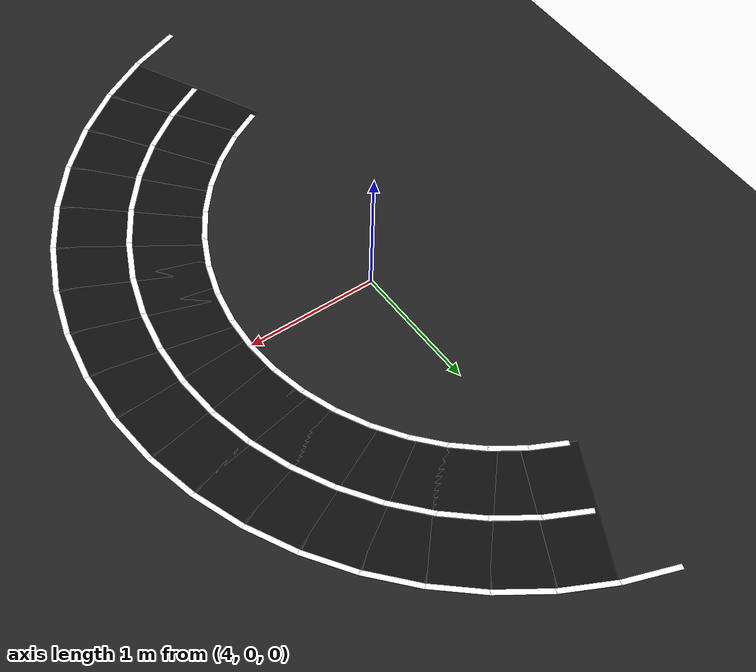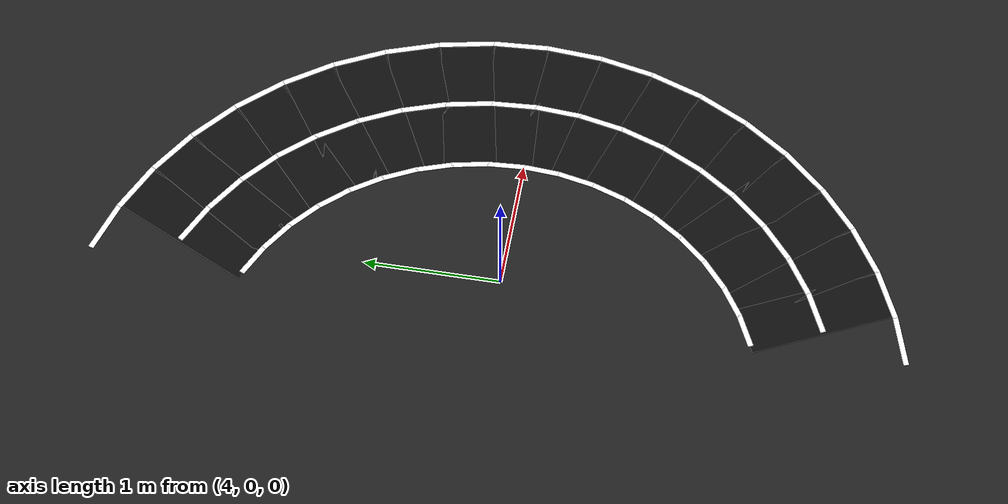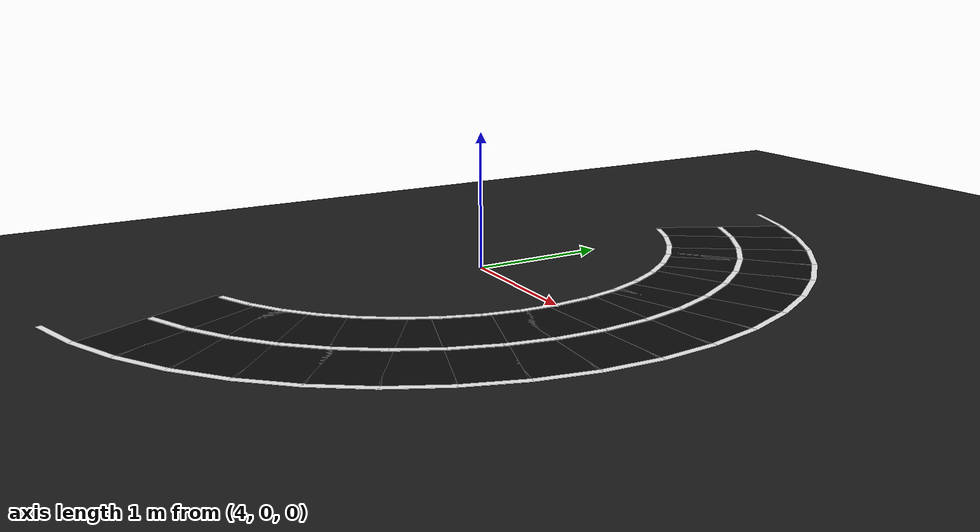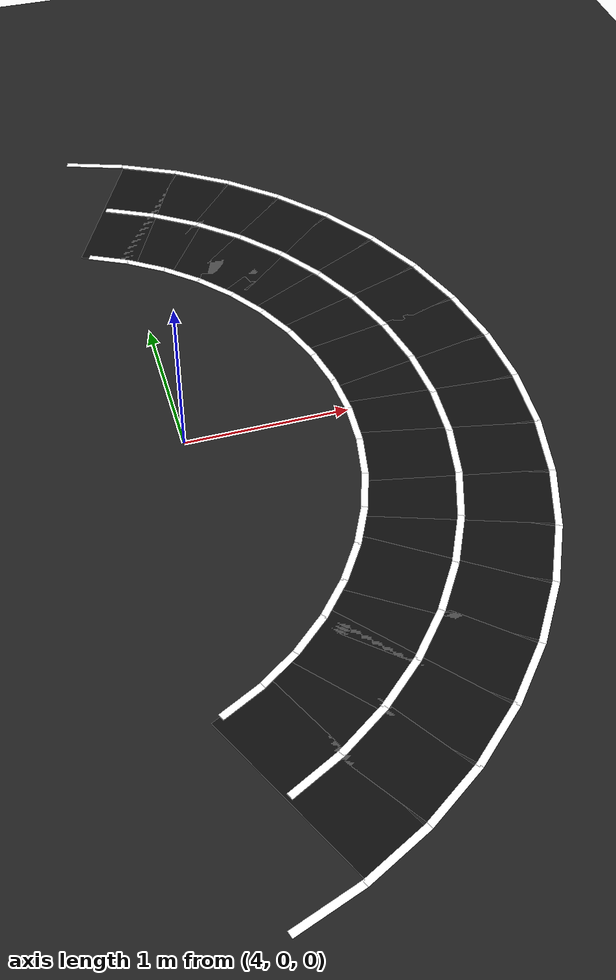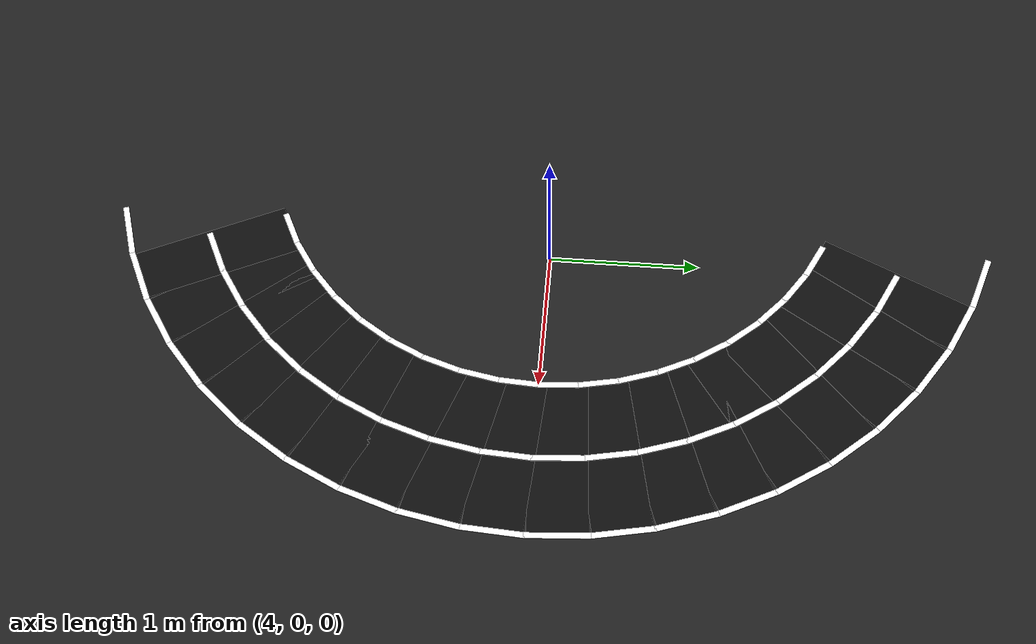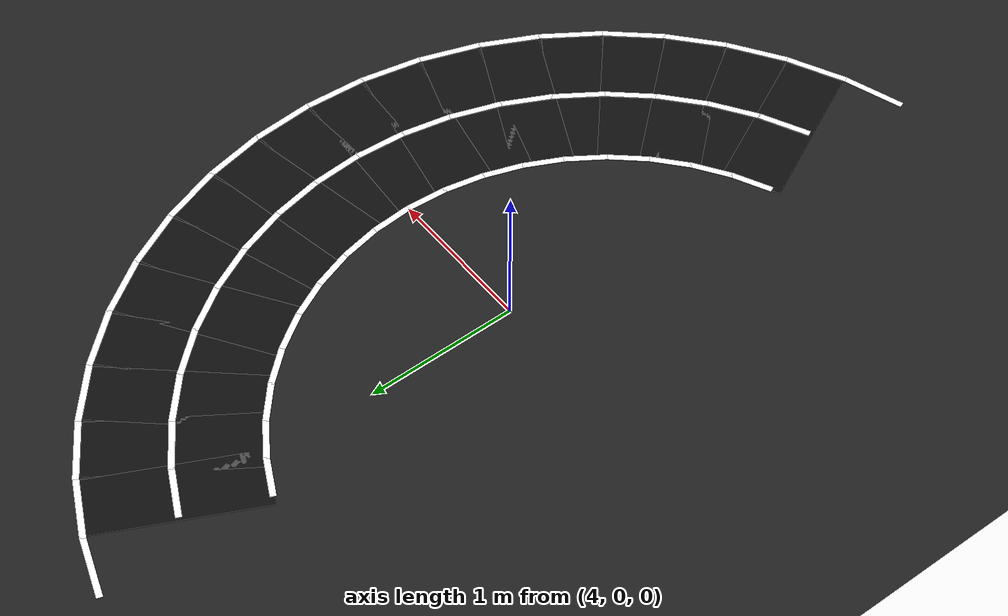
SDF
<sdf version="1.6">
 <world name="oval_lane_world">
  <model name="ground_plane">
   <static>true</static>
   <link name="link">
    <collision name="collision">
     <geometry><plane><normal>0 0 1</normal><size>100 100</size></plane></geometry>
     <surface><friction><ode><mu>1.0</mu><mu2>1.0</mu2></ode></friction></surface>
    </collision>
    <visual name="visual">
     <geometry><plane><normal>0 0 1</normal><size>100 100</size></plane></geometry>
     <material><ambient>0.10 0.10 0.10 1</ambient><diffuse>0.12 0.12 0.12 1</diffuse></material>
    </visual>
   </link>
  </model>
  <model name="cl_r_2_2">
   <static>true</static>
   <pose>3.98617 2.90518 0.00700 0 0 -0.32725</pose>
   <link name="link">
    <visual name="visual">
     <geometry><box><size>0.41160 0.04000 0.00400</size></box></geometry>
     <material>
      <ambient>1.000 1.000 1.000 1</ambient>
      <diffuse>1.000 1.000 1.000 1</diffuse>
      <specular>0.05 0.05 0.05 1</specular>
     </material>
    </visual>
   </link>
  </model>
  <model name="road_r_3">
   <static>true</static>
   <pose>4.11744 2.26595 0.00250 0.0 0.0 -0.45815</pose>
   <link name="link">
    <visual name="visual">
     <geometry><box><size>0.38165 1.06800 0.00500</size></box></geometry>
     <material>
      <ambient>0.030 0.030 0.030 1</ambient>
      <diffuse>0.050 0.050 0.050 1</diffuse>
      <specular>0.05 0.05 0.05 1</specular>
     </material>
    </visual>
   </link>
  </model>
  <model name="cl_r_0_3">
   <static>true</static>
   <pose>3.88458 1.79375 0.00700 0 0 -0.45815</pose>
   <link name="link">
    <visual name="visual">
     <geometry><box><size>0.27180 0.04000 0.00400</size></box></geometry>
     <material>
      <ambient>1.000 1.000 1.000 1</ambient>
      <diffuse>1.000 1.000 1.000 1</diffuse>
      <specular>0.05 0.05 0.05 1</specular>
     </material>
    </visual>
   </link>
  </model>
  <model name="cl_r_1_3">
   <static>true</static>
   <pose>4.12076 2.27268 0.00700 0 0 -0.45815</pose>
   <link name="link">
    <visual name="visual">
     <geometry><box><size>0.34170 0.04000 0.00400</size></box></geometry>
     <material>
      <ambient>1.000 1.000 1.000 1</ambient>
      <diffuse>1.000 1.000 1.000 1</diffuse>
      <specular>0.05 0.05 0.05 1</specular>
     </material>
    </visual>
   </link>
  </model>
  <model name="cl_r_2_3">
   <static>true</static>
   <pose>4.35694 2.75161 0.00700 0 0 -0.45815</pose>
   <link name="link">
    <visual name="visual">
     <geometry><box><size>0.41160 0.04000 0.00400</size></box></geometry>
     <material>
      <ambient>1.000 1.000 1.000 1</ambient>
      <diffuse>1.000 1.000 1.000 1</diffuse>
      <specular>0.05 0.05 0.05 1</specular>
     </material>
    </visual>
   </link>
  </model>
  <model name="road_r_4">
   <static>true</static>
   <pose>4.40365 2.10071 0.00250 0.0 0.0 -0.58905</pose>
   <link name="link">
    <visual name="visual">
     <geometry><box><size>0.38165 1.06800 0.00500</size></box></geometry>
     <material>
      <ambient>0.030 0.030 0.030 1</ambient>
      <diffuse>0.050 0.050 0.050 1</diffuse>
      <specular>0.05 0.05 0.05 1</specular>
     </material>
    </visual>
   </link>
  </model>
  <model name="cl_r_0_4">
   <static>true</static>
   <pose>4.11114 1.66294 0.00700 0 0 -0.58905</pose>
   <link name="link">
    <visual name="visual">
     <geometry><box><size>0.27180 0.04000 0.00400</size></box></geometry>
     <material>
      <ambient>1.000 1.000 1.000 1</ambient>
      <diffuse>1.000 1.000 1.000 1</diffuse>
      <specular>0.05 0.05 0.05 1</specular>
     </material>
    </visual>
   </link>
  </model>
  <model name="cl_r_1_4">
   <static>true</static>
   <pose>4.40781 2.10694 0.00700 0 0 -0.58905</pose>
   <link name="link">
    <visual name="visual">
     <geometry><box><size>0.34170 0.04000 0.00400</size></box></geometry>
     <material>
      <ambient>1.000 1.000 1.000 1</ambient>
      <diffuse>1.000 1.000 1.000 1</diffuse>
      <specular>0.05 0.05 0.05 1</specular>
     </material>
    </visual>
   </link>
  </model>
  <model name="cl_r_2_4">
   <static>true</static>
   <pose>4.70449 2.55095 0.00700 0 0 -0.58905</pose>
   <link name="link">
    <visual name="visual">
     <geometry><box><size>0.41160 0.04000 0.00400</size></box></geometry>
     <material>
      <ambient>1.000 1.000 1.000 1</ambient>
      <diffuse>1.000 1.000 1.000 1</diffuse>
      <specular>0.05 0.05 0.05 1</specular>
     </material>
    </visual>
   </link>
  </model>
  <model name="road_r_5">
   <static>true</static>
   <pose>4.66584 1.89952 0.00250 0.0 0.0 -0.71995</pose>
   <link name="link">
    <visual name="visual">
     <geometry><box><size>0.38165 1.06800 0.00500</size></box></geometry>
     <material>
      <ambient>0.030 0.030 0.030 1</ambient>
      <diffuse>0.050 0.050 0.050 1</diffuse>
      <specular>0.05 0.05 0.05 1</specular>
     </material>
    </visual>
   </link>
  </model>
  <model name="cl_r_0_5">
   <static>true</static>
   <pose>4.31869 1.50368 0.00700 0 0 -0.71995</pose>
   <link name="link">
    <visual name="visual">
     <geometry><box><size>0.27180 0.04000 0.00400</size></box></geometry>
     <material>
      <ambient>1.000 1.000 1.000 1</ambient>
      <diffuse>1.000 1.000 1.000 1</diffuse>
      <specular>0.05 0.05 0.05 1</specular>
     </material>
    </visual>
   </link>
  </model>
  <model name="cl_r_1_5">
   <static>true</static>
   <pose>4.67078 1.90516 0.00700 0 0 -0.71995</pose>
   <link name="link">
    <visual name="visual">
     <geometry><box><size>0.34170 0.04000 0.00400</size></box></geometry>
     <material>
      <ambient>1.000 1.000 1.000 1</ambient>
      <diffuse>1.000 1.000 1.000 1</diffuse>
      <specular>0.05 0.05 0.05 1</specular>
     </material>
    </visual>
   </link>
  </model>
  <model name="cl_r_2_5">
   <static>true</static>
   <pose>5.02287 2.30664 0.00700 0 0 -0.71995</pose>
   <link name="link">
    <visual name="visual">
     <geometry><box><size>0.41160 0.04000 0.00400</size></box></geometry>
     <material>
      <ambient>1.000 1.000 1.000 1</ambient>
      <diffuse>1.000 1.000 1.000 1</diffuse>
      <specular>0.05 0.05 0.05 1</specular>
     </material>
    </visual>
   </link>
  </model>
  <model name="road_r_6">
   <static>true</static>
   <pose>4.89952 1.66584 0.00250 0.0 0.0 -0.85085</pose>
   <link name="link">
    <visual name="visual">
     <geometry><box><size>0.38165 1.06800 0.00500</size></box></geometry>
     <material>
      <ambient>0.030 0.030 0.030 1</ambient>
      <diffuse>0.050 0.050 0.050 1</diffuse>
      <specular>0.05 0.05 0.05 1</specular>
     </material>
    </visual>
   </link>
  </model>
  <model name="cl_r_0_6">
   <static>true</static>
   <pose>4.50368 1.31869 0.00700 0 0 -0.85085</pose>
   <link name="link">
    <visual name="visual">
     <geometry><box><size>0.27180 0.04000 0.00400</size></box></geometry>
     <material>
      <ambient>1.000 1.000 1.000 1</ambient>
      <diffuse>1.000 1.000 1.000 1</diffuse>
      <specular>0.05 0.05 0.05 1</specular>
     </material>
    </visual>
   </link>
  </model>
  <model name="cl_r_1_6">
   <static>true</static>
   <pose>4.90516 1.67078 0.00700 0 0 -0.85085</pose>
   <link name="link">
    <visual name="visual">
     <geometry><box><size>0.34170 0.04000 0.00400</size></box></geometry>
     <material>
      <ambient>1.000 1.000 1.000 1</ambient>
      <diffuse>1.000 1.000 1.000 1</diffuse>
      <specular>0.05 0.05 0.05 1</specular>
     </material>
    </visual>
   </link>
  </model>
  <model name="cl_r_2_6">
   <static>true</static>
   <pose>5.30665 2.02287 0.00700 0 0 -0.85085</pose>
   <link name="link">
    <visual name="visual">
     <geometry><box><size>0.41160 0.04000 0.00400</size></box></geometry>
     <material>
      <ambient>1.000 1.000 1.000 1</ambient>
      <diffuse>1.000 1.000 1.000 1</diffuse>
      <specular>0.05 0.05 0.05 1</specular>
     </material>
    </visual>
   </link>
  </model>
  <model name="road_r_7">
   <static>true</static>
   <pose>5.10071 1.40365 0.00250 0.0 0.0 -0.98175</pose>
   <link name="link">
    <visual name="visual">
     <geometry><box><size>0.38165 1.06800 0.00500</size></box></geometry>
     <material>
      <ambient>0.030 0.030 0.030 1</ambient>
      <diffuse>0.050 0.050 0.050 1</diffuse>
      <specular>0.05 0.05 0.05 1</specular>
     </material>
    </visual>
   </link>
  </model>
  <model name="cl_r_0_7">
   <static>true</static>
   <pose>4.66294 1.11114 0.00700 0 0 -0.98175</pose>
   <link name="link">
    <visual name="visual">
     <geometry><box><size>0.27180 0.04000 0.00400</size></box></geometry>
     <material>
      <ambient>1.000 1.000 1.000 1</ambient>
      <diffuse>1.000 1.000 1.000 1</diffuse>
      <specular>0.05 0.05 0.05 1</specular>
     </material>
    </visual>
   </link>
  </model>
  <model name="cl_r_1_7">
   <static>true</static>
   <pose>5.10694 1.40781 0.00700 0 0 -0.98175</pose>
   <link name="link">
    <visual name="visual">
     <geometry><box><size>0.34170 0.04000 0.00400</size></box></geometry>
     <material>
      <ambient>1.000 1.000 1.000 1</ambient>
      <diffuse>1.000 1.000 1.000 1</diffuse>
      <specular>0.05 0.05 0.05 1</specular>
     </material>
    </visual>
   </link>
  </model>
  <model name="cl_r_2_7">
   <static>true</static>
   <pose>5.55095 1.70449 0.00700 0 0 -0.98175</pose>
   <link name="link">
    <visual name="visual">
     <geometry><box><size>0.41160 0.04000 0.00400</size></box></geometry>
     <material>
      <ambient>1.000 1.000 1.000 1</ambient>
      <diffuse>1.000 1.000 1.000 1</diffuse>
      <specular>0.05 0.05 0.05 1</specular>
     </material>
    </visual>
   </link>
  </model>
  <model name="road_r_8">
   <static>true</static>
   <pose>5.26595 1.11744 0.00250 0.0 0.0 -1.11265</pose>
   <link name="link">
    <visual name="visual">
     <geometry><box><size>0.38165 1.06800 0.00500</size></box></geometry>
     <material>
      <ambient>0.030 0.030 0.030 1</ambient>
      <diffuse>0.050 0.050 0.050 1</diffuse>
      <specular>0.05 0.05 0.05 1</specular>
     </material>
    </visual>
   </link>
  </model>
  <model name="cl_r_0_8">
   <static>true</static>
   <pose>4.79375 0.88458 0.00700 0 0 -1.11265</pose>
   <link name="link">
    <visual name="visual">
     <geometry><box><size>0.27180 0.04000 0.00400</size></box></geometry>
     <material>
      <ambient>1.000 1.000 1.000 1</ambient>
      <diffuse>1.000 1.000 1.000 1</diffuse>
      <specular>0.05 0.05 0.05 1</specular>
     </material>
    </visual>
   </link>
  </model>
  <model name="cl_r_1_8">
   <static>true</static>
   <pose>5.27268 1.12076 0.00700 0 0 -1.11265</pose>
   <link name="link">
    <visual name="visual">
     <geometry><box><size>0.34170 0.04000 0.00400</size></box></geometry>
     <material>
      <ambient>1.000 1.000 1.000 1</ambient>
      <diffuse>1.000 1.000 1.000 1</diffuse>
      <specular>0.05 0.05 0.05 1</specular>
     </material>
    </visual>
   </link>
  </model>
  <model name="cl_r_2_8">
   <static>true</static>
   <pose>5.75161 1.35694 0.00700 0 0 -1.11265</pose>
   <link name="link">
    <visual name="visual">
     <geometry><box><size>0.41160 0.04000 0.00400</size></box></geometry>
     <material>
      <ambient>1.000 1.000 1.000 1</ambient>
      <diffuse>1.000 1.000 1.000 1</diffuse>
      <specular>0.05 0.05 0.05 1</specular>
     </material>
    </visual>
   </link>
  </model>
  <model name="road_r_9">
   <static>true</static>
   <pose>5.39242 0.81212 0.00250 0.0 0.0 -1.24355</pose>
   <link name="link">
    <visual name="visual">
     <geometry><box><size>0.38165 1.06800 0.00500</size></box></geometry>
     <material>
      <ambient>0.030 0.030 0.030 1</ambient>
      <diffuse>0.050 0.050 0.050 1</diffuse>
      <specular>0.05 0.05 0.05 1</specular>
     </material>
    </visual>
   </link>
  </model>
  <model name="cl_r_0_9">
   <static>true</static>
   <pose>4.89386 0.64288 0.00700 0 0 -1.24355</pose>
   <link name="link">
    <visual name="visual">
     <geometry><box><size>0.27180 0.04000 0.00400</size></box></geometry>
     <material>
      <ambient>1.000 1.000 1.000 1</ambient>
      <diffuse>1.000 1.000 1.000 1</diffuse>
      <specular>0.05 0.05 0.05 1</specular>
     </material>
    </visual>
   </link>
  </model>
  <model name="cl_r_1_9">
   <static>true</static>
   <pose>5.39952 0.81453 0.00700 0 0 -1.24355</pose>
   <link name="link">
    <visual name="visual">
     <geometry><box><size>0.34170 0.04000 0.00400</size></box></geometry>
     <material>
      <ambient>1.000 1.000 1.000 1</ambient>
      <diffuse>1.000 1.000 1.000 1</diffuse>
      <specular>0.05 0.05 0.05 1</specular>
     </material>
    </visual>
   </link>
  </model>
  <model name="cl_r_2_9">
   <static>true</static>
   <pose>5.90518 0.98618 0.00700 0 0 -1.24355</pose>
   <link name="link">
    <visual name="visual">
     <geometry><box><size>0.41160 0.04000 0.00400</size></box></geometry>
     <material>
      <ambient>1.000 1.000 1.000 1</ambient>
      <diffuse>1.000 1.000 1.000 1</diffuse>
      <specular>0.05 0.05 0.05 1</specular>
     </material>
    </visual>
   </link>
  </model>
  <model name="road_r_10">
   <static>true</static>
   <pose>5.47795 0.49290 0.00250 0.0 0.0 -1.37445</pose>
   <link name="link">
    <visual name="visual">
     <geometry><box><size>0.38165 1.06800 0.00500</size></box></geometry>
     <material>
      <ambient>0.030 0.030 0.030 1</ambient>
      <diffuse>0.050 0.050 0.050 1</diffuse>
      <specular>0.05 0.05 0.05 1</specular>
     </material>
    </visual>
   </link>
  </model>
  <model name="cl_r_0_10">
   <static>true</static>
   <pose>4.96157 0.39018 0.00700 0 0 -1.37445</pose>
   <link name="link">
    <visual name="visual">
     <geometry><box><size>0.27180 0.04000 0.00400</size></box></geometry>
     <material>
      <ambient>1.000 1.000 1.000 1</ambient>
      <diffuse>1.000 1.000 1.000 1</diffuse>
      <specular>0.05 0.05 0.05 1</specular>
     </material>
    </visual>
   </link>
  </model>
  <model name="cl_r_1_10">
   <static>true</static>
   <pose>5.48531 0.49436 0.00700 0 0 -1.37445</pose>
   <link name="link">
    <visual name="visual">
     <geometry><box><size>0.34170 0.04000 0.00400</size></box></geometry>
     <material>
      <ambient>1.000 1.000 1.000 1</ambient>
      <diffuse>1.000 1.000 1.000 1</diffuse>
      <specular>0.05 0.05 0.05 1</specular>
     </material>
    </visual>
   </link>
  </model>
  <model name="cl_r_2_10">
   <static>true</static>
   <pose>6.00905 0.59854 0.00700 0 0 -1.37445</pose>
   <link name="link">
    <visual name="visual">
     <geometry><box><size>0.41160 0.04000 0.00400</size></box></geometry>
     <material>
      <ambient>1.000 1.000 1.000 1</ambient>
      <diffuse>1.000 1.000 1.000 1</diffuse>
      <specular>0.05 0.05 0.05 1</specular>
     </material>
    </visual>
   </link>
  </model>
  <model name="road_r_11">
   <static>true</static>
   <pose>5.52109 0.16524 0.00250 0.0 0.0 -1.50535</pose>
   <link name="link">
    <visual name="visual">
     <geometry><box><size>0.38165 1.06800 0.00500</size></box></geometry>
     <material>
      <ambient>0.030 0.030 0.030 1</ambient>
      <diffuse>0.050 0.050 0.050 1</diffuse>
      <specular>0.05 0.05 0.05 1</specular>
     </material>
    </visual>
   </link>
  </model>
  <model name="cl_r_0_11">
   <static>true</static>
   <pose>4.99572 0.13081 0.00700 0 0 -1.50535</pose>
   <link name="link">
    <visual name="visual">
     <geometry><box><size>0.27180 0.04000 0.00400</size></box></geometry>
     <material>
      <ambient>1.000 1.000 1.000 1</ambient>
      <diffuse>1.000 1.000 1.000 1</diffuse>
      <specular>0.05 0.05 0.05 1</specular>
     </material>
    </visual>
   </link>
  </model>
  <model name="cl_r_1_11">
   <static>true</static>
   <pose>5.52858 0.16573 0.00700 0 0 -1.50535</pose>
   <link name="link">
    <visual name="visual">
     <geometry><box><size>0.34170 0.04000 0.00400</size></box></geometry>
     <material>
      <ambient>1.000 1.000 1.000 1</ambient>
      <diffuse>1.000 1.000 1.000 1</diffuse>
      <specular>0.05 0.05 0.05 1</specular>
     </material>
    </visual>
   </link>
  </model>
  <model name="cl_r_2_11">
   <static>true</static>
   <pose>6.06143 0.20066 0.00700 0 0 -1.50535</pose>
   <link name="link">
    <visual name="visual">
     <geometry><box><size>0.41160 0.04000 0.00400</size></box></geometry>
     <material>
      <ambient>1.000 1.000 1.000 1</ambient>
      <diffuse>1.000 1.000 1.000 1</diffuse>
      <specular>0.05 0.05 0.05 1</specular>
     </material>
    </visual>
   </link>
  </model>
  <model name="road_r_12">
   <static>true</static>
   <pose>5.52109 -0.16524 0.00250 0.0 0.0 -1.63625</pose>
   <link name="link">
    <visual name="visual">
     <geometry><box><size>0.38165 1.06800 0.00500</size></box></geometry>
     <material>
      <ambient>0.030 0.030 0.030 1</ambient>
      <diffuse>0.050 0.050 0.050 1</diffuse>
      <specular>0.05 0.05 0.05 1</specular>
     </material>
    </visual>
   </link>
  </model>
  <model name="cl_r_0_12">
   <static>true</static>
   <pose>4.99572 -0.13081 0.00700 0 0 -1.63625</pose>
   <link name="link">
    <visual name="visual">
     <geometry><box><size>0.27180 0.04000 0.00400</size></box></geometry>
     <material>
      <ambient>1.000 1.000 1.000 1</ambient>
      <diffuse>1.000 1.000 1.000 1</diffuse>
      <specular>0.05 0.05 0.05 1</specular>
     </material>
    </visual>
   </link>
  </model>
  <model name="cl_r_1_12">
   <static>true</static>
   <pose>5.52857 -0.16573 0.00700 0 0 -1.63625</pose>
   <link name="link">
    <visual name="visual">
     <geometry><box><size>0.34170 0.04000 0.00400</size></box></geometry>
     <material>
      <ambient>1.000 1.000 1.000 1</ambient>
      <diffuse>1.000 1.000 1.000 1</diffuse>
      <specular>0.05 0.05 0.05 1</specular>
     </material>
    </visual>
   </link>
  </model>
  <model name="cl_r_2_12">
   <static>true</static>
   <pose>6.06143 -0.20066 0.00700 0 0 -1.63625</pose>
   <link name="link">
    <visual name="visual">
     <geometry><box><size>0.41160 0.04000 0.00400</size></box></geometry>
     <material>
      <ambient>1.000 1.000 1.000 1</ambient>
      <diffuse>1.000 1.000 1.000 1</diffuse>
      <specular>0.05 0.05 0.05 1</specular>
     </material>
    </visual>
   </link>
  </model>
  <model name="road_r_13">
   <static>true</static>
   <pose>5.47795 -0.49290 0.00250 0.0 0.0 -1.76715</pose>
   <link name="link">
    <visual name="visual">
     <geometry><box><size>0.38165 1.06800 0.00500</size></box></geometry>
     <material>
      <ambient>0.030 0.030 0.030 1</ambient>
      <diffuse>0.050 0.050 0.050 1</diffuse>
      <specular>0.05 0.05 0.05 1</specular>
     </material>
    </visual>
   </link>
  </model>
  <model name="cl_r_0_13">
   <static>true</static>
   <pose>4.96157 -0.39018 0.00700 0 0 -1.76715</pose>
   <link name="link">
    <visual name="visual">
     <geometry><box><size>0.27180 0.04000 0.00400</size></box></geometry>
     <material>
      <ambient>1.000 1.000 1.000 1</ambient>
      <diffuse>1.000 1.000 1.000 1</diffuse>
      <specular>0.05 0.05 0.05 1</specular>
     </material>
    </visual>
   </link>
  </model>
  <model name="cl_r_1_13">
   <static>true</static>
   <pose>5.48531 -0.49436 0.00700 0 0 -1.76715</pose>
   <link name="link">
    <visual name="visual">
     <geometry><box><size>0.34170 0.04000 0.00400</size></box></geometry>
     <material>
      <ambient>1.000 1.000 1.000 1</ambient>
      <diffuse>1.000 1.000 1.000 1</diffuse>
      <specular>0.05 0.05 0.05 1</specular>
     </material>
    </visual>
   </link>
  </model>
  <model name="cl_r_2_13">
   <static>true</static>
   <pose>6.00905 -0.59854 0.00700 0 0 -1.76715</pose>
   <link name="link">
    <visual name="visual">
     <geometry><box><size>0.41160 0.04000 0.00400</size></box></geometry>
     <material>
      <ambient>1.000 1.000 1.000 1</ambient>
      <diffuse>1.000 1.000 1.000 1</diffuse>
      <specular>0.05 0.05 0.05 1</specular>
     </material>
    </visual>
   </link>
  </model>
  <model name="road_r_14">
   <static>true</static>
   <pose>5.39242 -0.81211 0.00250 0.0 0.0 -1.89805</pose>
   <link name="link">
    <visual name="visual">
     <geometry><box><size>0.38165 1.06800 0.00500</size></box></geometry>
     <material>
      <ambient>0.030 0.030 0.030 1</ambient>
      <diffuse>0.050 0.050 0.050 1</diffuse>
      <specular>0.05 0.05 0.05 1</specular>
     </material>
    </visual>
   </link>
  </model>
  <model name="cl_r_0_14">
   <static>true</static>
   <pose>4.89386 -0.64288 0.00700 0 0 -1.89805</pose>
   <link name="link">
    <visual name="visual">
     <geometry><box><size>0.27180 0.04000 0.00400</size></box></geometry>
     <material>
      <ambient>1.000 1.000 1.000 1</ambient>
      <diffuse>1.000 1.000 1.000 1</diffuse>
      <specular>0.05 0.05 0.05 1</specular>
     </material>
    </visual>
   </link>
  </model>
  <model name="cl_r_1_14">
   <static>true</static>
   <pose>5.39952 -0.81453 0.00700 0 0 -1.89805</pose>
   <link name="link">
    <visual name="visual">
     <geometry><box><size>0.34170 0.04000 0.00400</size></box></geometry>
     <material>
      <ambient>1.000 1.000 1.000 1</ambient>
      <diffuse>1.000 1.000 1.000 1</diffuse>
      <specular>0.05 0.05 0.05 1</specular>
     </material>
    </visual>
   </link>
  </model>
  <model name="cl_r_2_14">
   <static>true</static>
   <pose>5.90518 -0.98617 0.00700 0 0 -1.89805</pose>
   <link name="link">
    <visual name="visual">
     <geometry><box><size>0.41160 0.04000 0.00400</size></box></geometry>
     <material>
      <ambient>1.000 1.000 1.000 1</ambient>
      <diffuse>1.000 1.000 1.000 1</diffuse>
      <specular>0.05 0.05 0.05 1</specular>
     </material>
    </visual>
   </link>
  </model>
  <model name="road_r_15">
   <static>true</static>
   <pose>5.26595 -1.11744 0.00250 0.0 0.0 -2.02895</pose>
   <link name="link">
    <visual name="visual">
     <geometry><box><size>0.38165 1.06800 0.00500</size></box></geometry>
     <material>
      <ambient>0.030 0.030 0.030 1</ambient>
      <diffuse>0.050 0.050 0.050 1</diffuse>
      <specular>0.05 0.05 0.05 1</specular>
     </material>
    </visual>
   </link>
  </model>
  <model name="cl_r_0_15">
   <static>true</static>
   <pose>4.79375 -0.88458 0.00700 0 0 -2.02895</pose>
   <link name="link">
    <visual name="visual">
     <geometry><box><size>0.27180 0.04000 0.00400</size></box></geometry>
     <material>
      <ambient>1.000 1.000 1.000 1</ambient>
      <diffuse>1.000 1.000 1.000 1</diffuse>
      <specular>0.05 0.05 0.05 1</specular>
     </material>
    </visual>
   </link>
  </model>
  <model name="cl_r_1_15">
   <static>true</static>
   <pose>5.27268 -1.12076 0.00700 0 0 -2.02895</pose>
   <link name="link">
    <visual name="visual">
     <geometry><box><size>0.34170 0.04000 0.00400</size></box></geometry>
     <material>
      <ambient>1.000 1.000 1.000 1</ambient>
      <diffuse>1.000 1.000 1.000 1</diffuse>
      <specular>0.05 0.05 0.05 1</specular>
     </material>
    </visual>
   </link>
  </model>
  <model name="cl_r_2_15">
   <static>true</static>
   <pose>5.75161 -1.35694 0.00700 0 0 -2.02895</pose>
   <link name="link">
    <visual name="visual">
     <geometry><box><size>0.41160 0.04000 0.00400</size></box></geometry>
     <material>
      <ambient>1.000 1.000 1.000 1</ambient>
      <diffuse>1.000 1.000 1.000 1</diffuse>
      <specular>0.05 0.05 0.05 1</specular>
     </material>
    </visual>
   </link>
  </model>
  <model name="road_r_16">
   <static>true</static>
   <pose>5.10071 -1.40365 0.00250 0.0 0.0 -2.15984</pose>
   <link name="link">
    <visual name="visual">
     <geometry><box><size>0.38165 1.06800 0.00500</size></box></geometry>
     <material>
      <ambient>0.030 0.030 0.030 1</ambient>
      <diffuse>0.050 0.050 0.050 1</diffuse>
      <specular>0.05 0.05 0.05 1</specular>
     </material>
    </visual>
   </link>
  </model>
  <model name="cl_r_0_16">
   <static>true</static>
   <pose>4.66294 -1.11114 0.00700 0 0 -2.15984</pose>
   <link name="link">
    <visual name="visual">
     <geometry><box><size>0.27180 0.04000 0.00400</size></box></geometry>
     <material>
      <ambient>1.000 1.000 1.000 1</ambient>
      <diffuse>1.000 1.000 1.000 1</diffuse>
      <specular>0.05 0.05 0.05 1</specular>
     </material>
    </visual>
   </link>
  </model>
  <model name="cl_r_1_16">
   <static>true</static>
   <pose>5.10694 -1.40781 0.00700 0 0 -2.15984</pose>
   <link name="link">
    <visual name="visual">
     <geometry><box><size>0.34170 0.04000 0.00400</size></box></geometry>
     <material>
      <ambient>1.000 1.000 1.000 1</ambient>
      <diffuse>1.000 1.000 1.000 1</diffuse>
      <specular>0.05 0.05 0.05 1</specular>
     </material>
    </visual>
   </link>
  </model>
  <model name="cl_r_2_16">
   <static>true</static>
   <pose>5.55095 -1.70449 0.00700 0 0 -2.15984</pose>
   <link name="link">
    <visual name="visual">
     <geometry><box><size>0.41160 0.04000 0.00400</size></box></geometry>
     <material>
      <ambient>1.000 1.000 1.000 1</ambient>
      <diffuse>1.000 1.000 1.000 1</diffuse>
      <specular>0.05 0.05 0.05 1</specular>
     </material>
    </visual>
   </link>
  </model>
  <model name="road_r_17">
   <static>true</static>
   <pose>4.89952 -1.66584 0.00250 0.0 0.0 -2.29074</pose>
   <link name="link">
    <visual name="visual">
     <geometry><box><size>0.38165 1.06800 0.00500</size></box></geometry>
     <material>
      <ambient>0.030 0.030 0.030 1</ambient>
      <diffuse>0.050 0.050 0.050 1</diffuse>
      <specular>0.05 0.05 0.05 1</specular>
     </material>
    </visual>
   </link>
  </model>
  <model name="cl_r_0_17">
   <static>true</static>
   <pose>4.50368 -1.31869 0.00700 0 0 -2.29074</pose>
   <link name="link">
    <visual name="visual">
     <geometry><box><size>0.27180 0.04000 0.00400</size></box></geometry>
     <material>
      <ambient>1.000 1.000 1.000 1</ambient>
      <diffuse>1.000 1.000 1.000 1</diffuse>
      <specular>0.05 0.05 0.05 1</specular>
     </material>
    </visual>
   </link>
  </model>
  <model name="cl_r_1_17">
   <static>true</static>
   <pose>4.90516 -1.67078 0.00700 0 0 -2.29074</pose>
   <link name="link">
    <visual name="visual">
     <geometry><box><size>0.34170 0.04000 0.00400</size></box></geometry>
     <material>
      <ambient>1.000 1.000 1.000 1</ambient>
      <diffuse>1.000 1.000 1.000 1</diffuse>
      <specular>0.05 0.05 0.05 1</specular>
     </material>
    </visual>
   </link>
  </model>
  <model name="cl_r_2_17">
   <static>true</static>
   <pose>5.30664 -2.02287 0.00700 0 0 -2.29074</pose>
   <link name="link">
    <visual name="visual">
     <geometry><box><size>0.41160 0.04000 0.00400</size></box></geometry>
     <material>
      <ambient>1.000 1.000 1.000 1</ambient>
      <diffuse>1.000 1.000 1.000 1</diffuse>
      <specular>0.05 0.05 0.05 1</specular>
     </material>
    </visual>
   </link>
  </model>
  <model name="road_r_18">
   <static>true</static>
   <pose>4.66584 -1.89952 0.00250 0.0 0.0 -2.42164</pose>
   <link name="link">
    <visual name="visual">
     <geometry><box><size>0.38165 1.06800 0.00500</size></box></geometry>
     <material>
      <ambient>0.030 0.030 0.030 1</ambient>
      <diffuse>0.050 0.050 0.050 1</diffuse>
      <specular>0.05 0.05 0.05 1</specular>
     </material>
    </visual>
   </link>
  </model>
  <model name="cl_r_0_18">
   <static>true</static>
   <pose>4.31869 -1.50368 0.00700 0 0 -2.42164</pose>
   <link name="link">
    <visual name="visual">
     <geometry><box><size>0.27180 0.04000 0.00400</size></box></geometry>
     <material>
      <ambient>1.000 1.000 1.000 1</ambient>
      <diffuse>1.000 1.000 1.000 1</diffuse>
      <specular>0.05 0.05 0.05 1</specular>
     </material>
    </visual>
   </link>
  </model>
  <model name="cl_r_1_18">
   <static>true</static>
   <pose>4.67078 -1.90516 0.00700 0 0 -2.42164</pose>
   <link name="link">
    <visual name="visual">
     <geometry><box><size>0.34170 0.04000 0.00400</size></box></geometry>
     <material>
      <ambient>1.000 1.000 1.000 1</ambient>
      <diffuse>1.000 1.000 1.000 1</diffuse>
      <specular>0.05 0.05 0.05 1</specular>
     </material>
    </visual>
   </link>
  </model>
  <model name="cl_r_2_18">
   <static>true</static>
   <pose>5.02287 -2.30665 0.00700 0 0 -2.42164</pose>
   <link name="link">
    <visual name="visual">
     <geometry><box><size>0.41160 0.04000 0.00400</size></box></geometry>
     <material>
      <ambient>1.000 1.000 1.000 1</ambient>
      <diffuse>1.000 1.000 1.000 1</diffuse>
      <specular>0.05 0.05 0.05 1</specular>
     </material>
    </visual>
   </link>
  </model>
  <model name="road_r_19">
   <static>true</static>
   <pose>4.40365 -2.10071 0.00250 0.0 0.0 -2.55254</pose>
   <link name="link">
    <visual name="visual">
     <geometry><box><size>0.38165 1.06800 0.00500</size></box></geometry>
     <material>
      <ambient>0.030 0.030 0.030 1</ambient>
      <diffuse>0.050 0.050 0.050 1</diffuse>
      <specular>0.05 0.05 0.05 1</specular>
     </material>
    </visual>
   </link>
  </model>
  <model name="cl_r_0_19">
   <static>true</static>
   <pose>4.11114 -1.66294 0.00700 0 0 -2.55254</pose>
   <link name="link">
    <visual name="visual">
     <geometry><box><size>0.27180 0.04000 0.00400</size></box></geometry>
     <material>
      <ambient>1.000 1.000 1.000 1</ambient>
      <diffuse>1.000 1.000 1.000 1</diffuse>
      <specular>0.05 0.05 0.05 1</specular>
     </material>
    </visual>
   </link>
  </model>
  <model name="cl_r_1_19">
   <static>true</static>
   <pose>4.40781 -2.10694 0.00700 0 0 -2.55254</pose>
   <link name="link">
    <visual name="visual">
     <geometry><box><size>0.34170 0.04000 0.00400</size></box></geometry>
     <material>
      <ambient>1.000 1.000 1.000 1</ambient>
      <diffuse>1.000 1.000 1.000 1</diffuse>
      <specular>0.05 0.05 0.05 1</specular>
     </material>
    </visual>
   </link>
  </model>
  <model name="cl_r_2_19">
   <static>true</static>
   <pose>4.70449 -2.55095 0.00700 0 0 -2.55254</pose>
   <link name="link">
    <visual name="visual">
     <geometry><box><size>0.41160 0.04000 0.00400</size></box></geometry>
     <material>
      <ambient>1.000 1.000 1.000 1</ambient>
      <diffuse>1.000 1.000 1.000 1</diffuse>
      <specular>0.05 0.05 0.05 1</specular>
     </material>
    </visual>
   </link>
  </model>
  <model name="road_r_20">
   <static>true</static>
   <pose>4.11744 -2.26595 0.00250 0.0 0.0 -2.68344</pose>
   <link name="link">
    <visual name="visual">
     <geometry><box><size>0.38165 1.06800 0.00500</size></box></geometry>
     <material>
      <ambient>0.030 0.030 0.030 1</ambient>
      <diffuse>0.050 0.050 0.050 1</diffuse>
      <specular>0.05 0.05 0.05 1</specular>
     </material>
    </visual>
   </link>
  </model>
  <model name="cl_r_0_20">
   <static>true</static>
   <pose>3.88458 -1.79375 0.00700 0 0 -2.68344</pose>
   <link name="link">
    <visual name="visual">
     <geometry><box><size>0.27180 0.04000 0.00400</size></box></geometry>
     <material>
      <ambient>1.000 1.000 1.000 1</ambient>
      <diffuse>1.000 1.000 1.000 1</diffuse>
      <specular>0.05 0.05 0.05 1</specular>
     </material>
    </visual>
   </link>
  </model>
  <model name="cl_r_1_20">
   <static>true</static>
   <pose>4.12076 -2.27268 0.00700 0 0 -2.68344</pose>
   <link name="link">
    <visual name="visual">
     <geometry><box><size>0.34170 0.04000 0.00400</size></box></geometry>
     <material>
      <ambient>1.000 1.000 1.000 1</ambient>
      <diffuse>1.000 1.000 1.000 1</diffuse>
      <specular>0.05 0.05 0.05 1</specular>
     </material>
    </visual>
   </link>
  </model>
  <model name="cl_r_2_20">
   <static>true</static>
   <pose>4.35694 -2.75161 0.00700 0 0 -2.68344</pose>
   <link name="link">
    <visual name="visual">
     <geometry><box><size>0.41160 0.04000 0.00400</size></box></geometry>
     <material>
      <ambient>1.000 1.000 1.000 1</ambient>
      <diffuse>1.000 1.000 1.000 1</diffuse>
      <specular>0.05 0.05 0.05 1</specular>
     </material>
    </visual>
   </link>
  </model>
  <model name="cl_r_2_21">
   <static>true</static>
   <pose>3.98618 -2.90518 0.00700 0 0 -2.81434</pose>
   <link name="link">
    <visual name="visual">
     <geometry><box><size>0.41160 0.04000 0.00400</size></box></geometry>
     <material>
      <ambient>1.000 1.000 1.000 1</ambient>
      <diffuse>1.000 1.000 1.000 1</diffuse>
      <specular>0.05 0.05 0.05 1</specular>
     </material>
    </visual>
   </link>
  </model>
 </world>
</sdf>
